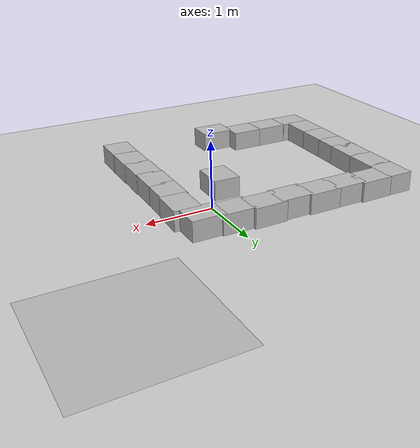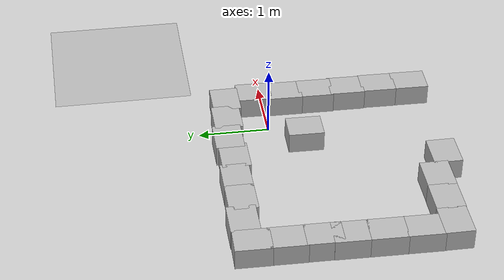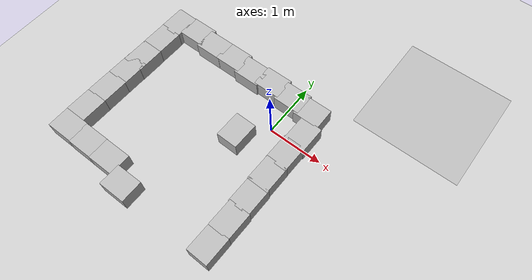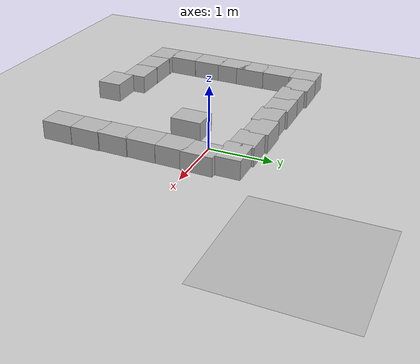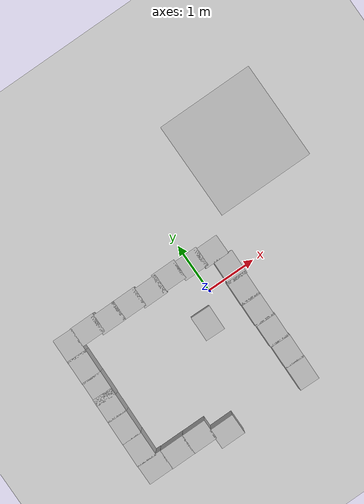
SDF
<sdf version="1.6">
 <world name="default">
  <model name="ground_plane">
   <static>1</static>
   <link name="link">
    <collision name="collision">
     <geometry><plane><normal>0 0 1</normal><size>100 100</size></plane></geometry>
     <surface>
      <contact><collide_bitmask>65535</collide_bitmask></contact>
      <friction><ode><mu>100</mu><mu2>50</mu2></ode></friction>
     </surface>
    </collision>
    <visual name="visual">
     <cast_shadows>0</cast_shadows>
     <geometry><plane><normal>0 0 1</normal><size>100 100</size></plane></geometry>
     <material>
      <script><uri>file://media/materials/scripts/gazebo.material</uri><name>Gazebo/Grey</name></script>
     </material>
    </visual>
   </link>
   <pose>0.215037 0.234206 0 0 -0 0</pose>
  </model>
  <model name="box_clone_3">
   <link name="cardboard_box_clone::link">
    <inertial>
     <mass>2</mass>
     <inertia>
      <ixx>0.0416667</ixx>
      <ixy>0</ixy>
      <ixz>0</ixz>
      <iyy>0.0566667</iyy>
      <iyz>0</iyz>
      <izz>0.0683333</izz>
     </inertia>
    </inertial>
    <visual name="visual">
     <pose>0 0 -0.15 0 -0 0</pose>
     <geometry>
      <mesh><uri>model://cardboard_box/meshes/cardboard_box.dae</uri><scale>1.25932 1.00745 0.755591</scale></mesh>
     </geometry>
    </visual>
    <collision name="collision">
     <geometry><box><size>0.5 0.4 0.3</size></box></geometry>
     <surface>
      <friction>
       <ode><mu>1</mu><mu2>1</mu2><fdir1>0 0 0</fdir1><slip1>0</slip1><slip2>0</slip2></ode>
       <torsional>
        <coefficient>1</coefficient>
        <patch_radius>0</patch_radius>
        <surface_radius>0</surface_radius>
        <use_patch_radius>1</use_patch_radius>
        <ode><slip>0</slip></ode>
       </torsional>
      </friction>
      <bounce><restitution_coefficient>0</restitution_coefficient><threshold>1e+06</threshold></bounce>
      <contact>
       <collide_without_contact>0</collide_without_contact>
       <collide_without_contact_bitmask>1</collide_without_contact_bitmask>
       <collide_bitmask>1</collide_bitmask>
       <ode>
        <soft_cfm>0</soft_cfm>
        <soft_erp>0.2</soft_erp>
        <kp>1e+07</kp>
        <kd>1</kd>
        <max_vel>0.1</max_vel>
        <min_depth>0.001</min_depth>
       </ode>
       <bullet>
        <split_impulse>1</split_impulse>
        <split_impulse_penetration_threshold>-0.01</split_impulse_penetration_threshold>
        <soft_cfm>0</soft_cfm>
        <soft_erp>0.2</soft_erp>
        <kp>1e+07</kp>
        <kd>1</kd>
       </bullet>
      </contact>
     </surface>
    </collision>
   </link>
   <static>1</static>
   <pose>-2.67175 -0.660249 0.149 0 -0 1.55153</pose>
  </model>
  <model name="box_clone_3_clone">
   <link name="cardboard_box_clone::link">
    <inertial>
     <mass>2</mass>
     <inertia>
      <ixx>0.0416667</ixx>
      <ixy>0</ixy>
      <ixz>0</ixz>
      <iyy>0.0566667</iyy>
      <iyz>0</iyz>
      <izz>0.0683333</izz>
     </inertia>
    </inertial>
    <visual name="visual">
     <pose>0 0 -0.15 0 -0 0</pose>
     <geometry>
      <mesh><uri>model://cardboard_box/meshes/cardboard_box.dae</uri><scale>1.25932 1.00745 0.755591</scale></mesh>
     </geometry>
    </visual>
    <collision name="collision">
     <geometry><box><size>0.5 0.4 0.3</size></box></geometry>
     <surface>
      <friction>
       <ode><mu>1</mu><mu2>1</mu2><fdir1>0 0 0</fdir1><slip1>0</slip1><slip2>0</slip2></ode>
       <torsional>
        <coefficient>1</coefficient>
        <patch_radius>0</patch_radius>
        <surface_radius>0</surface_radius>
        <use_patch_radius>1</use_patch_radius>
        <ode><slip>0</slip></ode>
       </torsional>
      </friction>
      <bounce><restitution_coefficient>0</restitution_coefficient><threshold>1e+06</threshold></bounce>
      <contact>
       <collide_without_contact>0</collide_without_contact>
       <collide_without_contact_bitmask>1</collide_without_contact_bitmask>
       <collide_bitmask>1</collide_bitmask>
       <ode>
        <soft_cfm>0</soft_cfm>
        <soft_erp>0.2</soft_erp>
        <kp>1e+07</kp>
        <kd>1</kd>
        <max_vel>0.1</max_vel>
        <min_depth>0.001</min_depth>
       </ode>
       <bullet>
        <split_impulse>1</split_impulse>
        <split_impulse_penetration_threshold>-0.01</split_impulse_penetration_threshold>
        <soft_cfm>0</soft_cfm>
        <soft_erp>0.2</soft_erp>
        <kp>1e+07</kp>
        <kd>1</kd>
       </bullet>
      </contact>
     </surface>
    </collision>
   </link>
   <static>1</static>
   <pose>-2.66078 -0.304132 0.149 0 -0 1.55153</pose>
  </model>
  <model name="box_clone_3_clone_0">
   <link name="cardboard_box_clone::link">
    <inertial>
     <mass>2</mass>
     <inertia>
      <ixx>0.0416667</ixx>
      <ixy>0</ixy>
      <ixz>0</ixz>
      <iyy>0.0566667</iyy>
      <iyz>0</iyz>
      <izz>0.0683333</izz>
     </inertia>
    </inertial>
    <visual name="visual">
     <pose>0 0 -0.15 0 -0 0</pose>
     <geometry>
      <mesh><uri>model://cardboard_box/meshes/cardboard_box.dae</uri><scale>1.25932 1.00745 0.755591</scale></mesh>
     </geometry>
    </visual>
    <collision name="collision">
     <geometry><box><size>0.5 0.4 0.3</size></box></geometry>
     <surface>
      <friction>
       <ode><mu>1</mu><mu2>1</mu2><fdir1>0 0 0</fdir1><slip1>0</slip1><slip2>0</slip2></ode>
       <torsional>
        <coefficient>1</coefficient>
        <patch_radius>0</patch_radius>
        <surface_radius>0</surface_radius>
        <use_patch_radius>1</use_patch_radius>
        <ode><slip>0</slip></ode>
       </torsional>
      </friction>
      <bounce><restitution_coefficient>0</restitution_coefficient><threshold>1e+06</threshold></bounce>
      <contact>
       <collide_without_contact>0</collide_without_contact>
       <collide_without_contact_bitmask>1</collide_without_contact_bitmask>
       <collide_bitmask>1</collide_bitmask>
       <ode>
        <soft_cfm>0</soft_cfm>
        <soft_erp>0.2</soft_erp>
        <kp>1e+07</kp>
        <kd>1</kd>
        <max_vel>0.1</max_vel>
        <min_depth>0.001</min_depth>
       </ode>
       <bullet>
        <split_impulse>1</split_impulse>
        <split_impulse_penetration_threshold>-0.01</split_impulse_penetration_threshold>
        <soft_cfm>0</soft_cfm>
        <soft_erp>0.2</soft_erp>
        <kp>1e+07</kp>
        <kd>1</kd>
       </bullet>
      </contact>
     </surface>
    </collision>
   </link>
   <static>1</static>
   <pose>-2.68128 -1.13471 0.149 0 -0 1.55153</pose>
  </model>
  <model name="box_clone_3_clone_1">
   <link name="cardboard_box_clone::link">
    <inertial>
     <mass>2</mass>
     <inertia>
      <ixx>0.0416667</ixx>
      <ixy>0</ixy>
      <ixz>0</ixz>
      <iyy>0.0566667</iyy>
      <iyz>0</iyz>
      <izz>0.0683333</izz>
     </inertia>
    </inertial>
    <visual name="visual">
     <pose>0 0 -0.15 0 -0 0</pose>
     <geometry>
      <mesh><uri>model://cardboard_box/meshes/cardboard_box.dae</uri><scale>1.25932 1.00745 0.755591</scale></mesh>
     </geometry>
    </visual>
    <collision name="collision">
     <geometry><box><size>0.5 0.4 0.3</size></box></geometry>
     <surface>
      <friction>
       <ode><mu>1</mu><mu2>1</mu2><fdir1>0 0 0</fdir1><slip1>0</slip1><slip2>0</slip2></ode>
       <torsional>
        <coefficient>1</coefficient>
        <patch_radius>0</patch_radius>
        <surface_radius>0</surface_radius>
        <use_patch_radius>1</use_patch_radius>
        <ode><slip>0</slip></ode>
       </torsional>
      </friction>
      <bounce><restitution_coefficient>0</restitution_coefficient><threshold>1e+06</threshold></bounce>
      <contact>
       <collide_without_contact>0</collide_without_contact>
       <collide_without_contact_bitmask>1</collide_without_contact_bitmask>
       <collide_bitmask>1</collide_bitmask>
       <ode>
        <soft_cfm>0</soft_cfm>
        <soft_erp>0.2</soft_erp>
        <kp>1e+07</kp>
        <kd>1</kd>
        <max_vel>0.1</max_vel>
        <min_depth>0.001</min_depth>
       </ode>
       <bullet>
        <split_impulse>1</split_impulse>
        <split_impulse_penetration_threshold>-0.01</split_impulse_penetration_threshold>
        <soft_cfm>0</soft_cfm>
        <soft_erp>0.2</soft_erp>
        <kp>1e+07</kp>
        <kd>1</kd>
       </bullet>
      </contact>
     </surface>
    </collision>
   </link>
   <static>1</static>
   <pose>-2.68961 -1.61993 0.149 0 -0 1.55153</pose>
  </model>
  <model name="box_clone_2_clone">
   <link name="cardboard_box_clone::link">
    <inertial>
     <mass>2</mass>
     <inertia>
      <ixx>0.0416667</ixx>
      <ixy>0</ixy>
      <ixz>0</ixz>
      <iyy>0.0566667</iyy>
      <iyz>0</iyz>
      <izz>0.0683333</izz>
     </inertia>
    </inertial>
    <visual name="visual">
     <pose>0 0 -0.15 0 -0 0</pose>
     <geometry>
      <mesh><uri>model://cardboard_box/meshes/cardboard_box.dae</uri><scale>1.25932 1.00745 0.755591</scale></mesh>
     </geometry>
    </visual>
    <collision name="collision">
     <geometry><box><size>0.5 0.4 0.3</size></box></geometry>
     <surface>
      <friction>
       <ode><mu>1</mu><mu2>1</mu2><fdir1>0 0 0</fdir1><slip1>0</slip1><slip2>0</slip2></ode>
       <torsional>
        <coefficient>1</coefficient>
        <patch_radius>0</patch_radius>
        <surface_radius>0</surface_radius>
        <use_patch_radius>1</use_patch_radius>
        <ode><slip>0</slip></ode>
       </torsional>
      </friction>
      <bounce><restitution_coefficient>0</restitution_coefficient><threshold>1e+06</threshold></bounce>
      <contact>
       <collide_without_contact>0</collide_without_contact>
       <collide_without_contact_bitmask>1</collide_without_contact_bitmask>
       <collide_bitmask>1</collide_bitmask>
       <ode>
        <soft_cfm>0</soft_cfm>
        <soft_erp>0.2</soft_erp>
        <kp>1e+07</kp>
        <kd>1</kd>
        <max_vel>0.1</max_vel>
        <min_depth>0.001</min_depth>
       </ode>
       <bullet>
        <split_impulse>1</split_impulse>
        <split_impulse_penetration_threshold>-0.01</split_impulse_penetration_threshold>
        <soft_cfm>0</soft_cfm>
        <soft_erp>0.2</soft_erp>
        <kp>1e+07</kp>
        <kd>1</kd>
       </bullet>
      </contact>
     </surface>
    </collision>
   </link>
   <static>1</static>
   <pose>-2.64031 -2.04978 0.149 0 -0 0</pose>
  </model>
  <model name="box_clone_2_clone_0">
   <link name="cardboard_box_clone::link">
    <inertial>
     <mass>2</mass>
     <inertia>
      <ixx>0.0416667</ixx>
      <ixy>0</ixy>
      <ixz>0</ixz>
      <iyy>0.0566667</iyy>
      <iyz>0</iyz>
      <izz>0.0683333</izz>
     </inertia>
    </inertial>
    <visual name="visual">
     <pose>0 0 -0.15 0 -0 0</pose>
     <geometry>
      <mesh><uri>model://cardboard_box/meshes/cardboard_box.dae</uri><scale>1.25932 1.00745 0.755591</scale></mesh>
     </geometry>
    </visual>
    <collision name="collision">
     <geometry><box><size>0.5 0.4 0.3</size></box></geometry>
     <surface>
      <friction>
       <ode><mu>1</mu><mu2>1</mu2><fdir1>0 0 0</fdir1><slip1>0</slip1><slip2>0</slip2></ode>
       <torsional>
        <coefficient>1</coefficient>
        <patch_radius>0</patch_radius>
        <surface_radius>0</surface_radius>
        <use_patch_radius>1</use_patch_radius>
        <ode><slip>0</slip></ode>
       </torsional>
      </friction>
      <bounce><restitution_coefficient>0</restitution_coefficient><threshold>1e+06</threshold></bounce>
      <contact>
       <collide_without_contact>0</collide_without_contact>
       <collide_without_contact_bitmask>1</collide_without_contact_bitmask>
       <collide_bitmask>1</collide_bitmask>
       <ode>
        <soft_cfm>0</soft_cfm>
        <soft_erp>0.2</soft_erp>
        <kp>1e+07</kp>
        <kd>1</kd>
        <max_vel>0.1</max_vel>
        <min_depth>0.001</min_depth>
       </ode>
       <bullet>
        <split_impulse>1</split_impulse>
        <split_impulse_penetration_threshold>-0.01</split_impulse_penetration_threshold>
        <soft_cfm>0</soft_cfm>
        <soft_erp>0.2</soft_erp>
        <kp>1e+07</kp>
        <kd>1</kd>
       </bullet>
      </contact>
     </surface>
    </collision>
   </link>
   <static>1</static>
   <pose>-2.1539 -2.05558 0.149 0 -0 0</pose>
  </model>
  <model name="box_clone_2_clone_1">
   <link name="cardboard_box_clone::link">
    <inertial>
     <mass>2</mass>
     <inertia>
      <ixx>0.0416667</ixx>
      <ixy>0</ixy>
      <ixz>0</ixz>
      <iyy>0.0566667</iyy>
      <iyz>0</iyz>
      <izz>0.0683333</izz>
     </inertia>
    </inertial>
    <visual name="visual">
     <pose>0 0 -0.15 0 -0 0</pose>
     <geometry>
      <mesh><uri>model://cardboard_box/meshes/cardboard_box.dae</uri><scale>1.25932 1.00745 0.755591</scale></mesh>
     </geometry>
    </visual>
    <collision name="collision">
     <geometry><box><size>0.5 0.4 0.3</size></box></geometry>
     <surface>
      <friction>
       <ode><mu>1</mu><mu2>1</mu2><fdir1>0 0 0</fdir1><slip1>0</slip1><slip2>0</slip2></ode>
       <torsional>
        <coefficient>1</coefficient>
        <patch_radius>0</patch_radius>
        <surface_radius>0</surface_radius>
        <use_patch_radius>1</use_patch_radius>
        <ode><slip>0</slip></ode>
       </torsional>
      </friction>
      <bounce><restitution_coefficient>0</restitution_coefficient><threshold>1e+06</threshold></bounce>
      <contact>
       <collide_without_contact>0</collide_without_contact>
       <collide_without_contact_bitmask>1</collide_without_contact_bitmask>
       <collide_bitmask>1</collide_bitmask>
       <ode>
        <soft_cfm>0</soft_cfm>
        <soft_erp>0.2</soft_erp>
        <kp>1e+07</kp>
        <kd>1</kd>
        <max_vel>0.1</max_vel>
        <min_depth>0.001</min_depth>
       </ode>
       <bullet>
        <split_impulse>1</split_impulse>
        <split_impulse_penetration_threshold>-0.01</split_impulse_penetration_threshold>
        <soft_cfm>0</soft_cfm>
        <soft_erp>0.2</soft_erp>
        <kp>1e+07</kp>
        <kd>1</kd>
       </bullet>
      </contact>
     </surface>
    </collision>
   </link>
   <static>1</static>
   <pose>-1.67344 -2.05843 0.149 0 -0 0</pose>
  </model>
  <model name="box_clone_3_clone_clone">
   <link name="cardboard_box_clone::link">
    <inertial>
     <mass>2</mass>
     <inertia>
      <ixx>0.0416667</ixx>
      <ixy>0</ixy>
      <ixz>0</ixz>
      <iyy>0.0566667</iyy>
      <iyz>0</iyz>
      <izz>0.0683333</izz>
     </inertia>
    </inertial>
    <visual name="visual">
     <pose>0 0 -0.15 0 -0 0</pose>
     <geometry>
      <mesh><uri>model://cardboard_box/meshes/cardboard_box.dae</uri><scale>1.25932 1.00745 0.755591</scale></mesh>
     </geometry>
    </visual>
    <collision name="collision">
     <geometry><box><size>0.5 0.4 0.3</size></box></geometry>
     <surface>
      <friction>
       <ode><mu>1</mu><mu2>1</mu2><fdir1>0 0 0</fdir1><slip1>0</slip1><slip2>0</slip2></ode>
       <torsional>
        <coefficient>1</coefficient>
        <patch_radius>0</patch_radius>
        <surface_radius>0</surface_radius>
        <use_patch_radius>1</use_patch_radius>
        <ode><slip>0</slip></ode>
       </torsional>
      </friction>
      <bounce><restitution_coefficient>0</restitution_coefficient><threshold>1e+06</threshold></bounce>
      <contact>
       <collide_without_contact>0</collide_without_contact>
       <collide_without_contact_bitmask>1</collide_without_contact_bitmask>
       <collide_bitmask>1</collide_bitmask>
       <ode>
        <soft_cfm>0</soft_cfm>
        <soft_erp>0.2</soft_erp>
        <kp>1e+07</kp>
        <kd>1</kd>
        <max_vel>0.1</max_vel>
        <min_depth>0.001</min_depth>
       </ode>
       <bullet>
        <split_impulse>1</split_impulse>
        <split_impulse_penetration_threshold>-0.01</split_impulse_penetration_threshold>
        <soft_cfm>0</soft_cfm>
        <soft_erp>0.2</soft_erp>
        <kp>1e+07</kp>
        <kd>1</kd>
       </bullet>
      </contact>
     </surface>
    </collision>
   </link>
   <static>1</static>
   <pose>0.525405 -0.308483 0.149 0 -0 1.55153</pose>
  </model>
  <model name="box_clone_3_clone_clone_clone">
   <link name="cardboard_box_clone::link">
    <inertial>
     <mass>2</mass>
     <inertia>
      <ixx>0.0416667</ixx>
      <ixy>0</ixy>
      <ixz>0</ixz>
      <iyy>0.0566667</iyy>
      <iyz>0</iyz>
      <izz>0.0683333</izz>
     </inertia>
    </inertial>
    <visual name="visual">
     <pose>0 0 -0.15 0 -0 0</pose>
     <geometry>
      <mesh><uri>model://cardboard_box/meshes/cardboard_box.dae</uri><scale>1.25932 1.00745 0.755591</scale></mesh>
     </geometry>
    </visual>
    <collision name="collision">
     <geometry><box><size>0.5 0.4 0.3</size></box></geometry>
     <surface>
      <friction>
       <ode><mu>1</mu><mu2>1</mu2><fdir1>0 0 0</fdir1><slip1>0</slip1><slip2>0</slip2></ode>
       <torsional>
        <coefficient>1</coefficient>
        <patch_radius>0</patch_radius>
        <surface_radius>0</surface_radius>
        <use_patch_radius>1</use_patch_radius>
        <ode><slip>0</slip></ode>
       </torsional>
      </friction>
      <bounce><restitution_coefficient>0</restitution_coefficient><threshold>1e+06</threshold></bounce>
      <contact>
       <collide_without_contact>0</collide_without_contact>
       <collide_without_contact_bitmask>1</collide_without_contact_bitmask>
       <collide_bitmask>1</collide_bitmask>
       <ode>
        <soft_cfm>0</soft_cfm>
        <soft_erp>0.2</soft_erp>
        <kp>1e+07</kp>
        <kd>1</kd>
        <max_vel>0.1</max_vel>
        <min_depth>0.001</min_depth>
       </ode>
       <bullet>
        <split_impulse>1</split_impulse>
        <split_impulse_penetration_threshold>-0.01</split_impulse_penetration_threshold>
        <soft_cfm>0</soft_cfm>
        <soft_erp>0.2</soft_erp>
        <kp>1e+07</kp>
        <kd>1</kd>
       </bullet>
      </contact>
     </surface>
    </collision>
   </link>
   <static>1</static>
   <pose>0.521071 -0.766393 0.149 0 -0 1.55153</pose>
  </model>
  <model name="box_clone_3_clone_clone_clone_0">
   <link name="cardboard_box_clone::link">
    <inertial>
     <mass>2</mass>
     <inertia>
      <ixx>0.0416667</ixx>
      <ixy>0</ixy>
      <ixz>0</ixz>
      <iyy>0.0566667</iyy>
      <iyz>0</iyz>
      <izz>0.0683333</izz>
     </inertia>
    </inertial>
    <visual name="visual">
     <pose>0 0 -0.15 0 -0 0</pose>
     <geometry>
      <mesh><uri>model://cardboard_box/meshes/cardboard_box.dae</uri><scale>1.25932 1.00745 0.755591</scale></mesh>
     </geometry>
    </visual>
    <collision name="collision">
     <geometry><box><size>0.5 0.4 0.3</size></box></geometry>
     <surface>
      <friction>
       <ode><mu>1</mu><mu2>1</mu2><fdir1>0 0 0</fdir1><slip1>0</slip1><slip2>0</slip2></ode>
       <torsional>
        <coefficient>1</coefficient>
        <patch_radius>0</patch_radius>
        <surface_radius>0</surface_radius>
        <use_patch_radius>1</use_patch_radius>
        <ode><slip>0</slip></ode>
       </torsional>
      </friction>
      <bounce><restitution_coefficient>0</restitution_coefficient><threshold>1e+06</threshold></bounce>
      <contact>
       <collide_without_contact>0</collide_without_contact>
       <collide_without_contact_bitmask>1</collide_without_contact_bitmask>
       <collide_bitmask>1</collide_bitmask>
       <ode>
        <soft_cfm>0</soft_cfm>
        <soft_erp>0.2</soft_erp>
        <kp>1e+07</kp>
        <kd>1</kd>
        <max_vel>0.1</max_vel>
        <min_depth>0.001</min_depth>
       </ode>
       <bullet>
        <split_impulse>1</split_impulse>
        <split_impulse_penetration_threshold>-0.01</split_impulse_penetration_threshold>
        <soft_cfm>0</soft_cfm>
        <soft_erp>0.2</soft_erp>
        <kp>1e+07</kp>
        <kd>1</kd>
       </bullet>
      </contact>
     </surface>
    </collision>
   </link>
   <static>1</static>
   <pose>0.524186 -1.22775 0.149 0 -0 1.55153</pose>
  </model>
  <model name="box_clone_3_clone_clone_clone_1">
   <link name="cardboard_box_clone::link">
    <inertial>
     <mass>2</mass>
     <inertia>
      <ixx>0.0416667</ixx>
      <ixy>0</ixy>
      <ixz>0</ixz>
      <iyy>0.0566667</iyy>
      <iyz>0</iyz>
      <izz>0.0683333</izz>
     </inertia>
    </inertial>
    <visual name="visual">
     <pose>0 0 -0.15 0 -0 0</pose>
     <geometry>
      <mesh><uri>model://cardboard_box/meshes/cardboard_box.dae</uri><scale>1.25932 1.00745 0.755591</scale></mesh>
     </geometry>
    </visual>
    <collision name="collision">
     <geometry><box><size>0.5 0.4 0.3</size></box></geometry>
     <surface>
      <friction>
       <ode><mu>1</mu><mu2>1</mu2><fdir1>0 0 0</fdir1><slip1>0</slip1><slip2>0</slip2></ode>
       <torsional>
        <coefficient>1</coefficient>
        <patch_radius>0</patch_radius>
        <surface_radius>0</surface_radius>
        <use_patch_radius>1</use_patch_radius>
        <ode><slip>0</slip></ode>
       </torsional>
      </friction>
      <bounce><restitution_coefficient>0</restitution_coefficient><threshold>1e+06</threshold></bounce>
      <contact>
       <collide_without_contact>0</collide_without_contact>
       <collide_without_contact_bitmask>1</collide_without_contact_bitmask>
       <collide_bitmask>1</collide_bitmask>
       <ode>
        <soft_cfm>0</soft_cfm>
        <soft_erp>0.2</soft_erp>
        <kp>1e+07</kp>
        <kd>1</kd>
        <max_vel>0.1</max_vel>
        <min_depth>0.001</min_depth>
       </ode>
       <bullet>
        <split_impulse>1</split_impulse>
        <split_impulse_penetration_threshold>-0.01</split_impulse_penetration_threshold>
        <soft_cfm>0</soft_cfm>
        <soft_erp>0.2</soft_erp>
        <kp>1e+07</kp>
        <kd>1</kd>
       </bullet>
      </contact>
     </surface>
    </collision>
   </link>
   <static>1</static>
   <pose>0.528427 -1.69636 0.149 0 -0 1.55153</pose>
  </model>
  <model name="box_clone_3_clone_clone_clone_2">
   <link name="cardboard_box_clone::link">
    <inertial>
     <mass>2</mass>
     <inertia>
      <ixx>0.0416667</ixx>
      <ixy>0</ixy>
      <ixz>0</ixz>
      <iyy>0.0566667</iyy>
      <iyz>0</iyz>
      <izz>0.0683333</izz>
     </inertia>
    </inertial>
    <visual name="visual">
     <pose>0 0 -0.15 0 -0 0</pose>
     <geometry>
      <mesh><uri>model://cardboard_box/meshes/cardboard_box.dae</uri><scale>1.25932 1.00745 0.755591</scale></mesh>
     </geometry>
    </visual>
    <collision name="collision">
     <geometry><box><size>0.5 0.4 0.3</size></box></geometry>
     <surface>
      <friction>
       <ode><mu>1</mu><mu2>1</mu2><fdir1>0 0 0</fdir1><slip1>0</slip1><slip2>0</slip2></ode>
       <torsional>
        <coefficient>1</coefficient>
        <patch_radius>0</patch_radius>
        <surface_radius>0</surface_radius>
        <use_patch_radius>1</use_patch_radius>
        <ode><slip>0</slip></ode>
       </torsional>
      </friction>
      <bounce><restitution_coefficient>0</restitution_coefficient><threshold>1e+06</threshold></bounce>
      <contact>
       <collide_without_contact>0</collide_without_contact>
       <collide_without_contact_bitmask>1</collide_without_contact_bitmask>
       <collide_bitmask>1</collide_bitmask>
       <ode>
        <soft_cfm>0</soft_cfm>
        <soft_erp>0.2</soft_erp>
        <kp>1e+07</kp>
        <kd>1</kd>
        <max_vel>0.1</max_vel>
        <min_depth>0.001</min_depth>
       </ode>
       <bullet>
        <split_impulse>1</split_impulse>
        <split_impulse_penetration_threshold>-0.01</split_impulse_penetration_threshold>
        <soft_cfm>0</soft_cfm>
        <soft_erp>0.2</soft_erp>
        <kp>1e+07</kp>
        <kd>1</kd>
       </bullet>
      </contact>
     </surface>
    </collision>
   </link>
   <static>1</static>
   <pose>0.52335 -2.17334 0.149 0 -0 1.55153</pose>
  </model>
  <model name="box_clone_3_clone_clone_11">
   <link name="cardboard_box_clone::link">
    <inertial>
     <mass>2</mass>
     <inertia>
      <ixx>0.0416667</ixx>
      <ixy>0</ixy>
      <ixz>0</ixz>
      <iyy>0.0566667</iyy>
      <iyz>0</iyz>
      <izz>0.0683333</izz>
     </inertia>
    </inertial>
    <visual name="visual">
     <pose>0 0 -0.15 0 -0 0</pose>
     <geometry>
      <mesh><uri>model://cardboard_box/meshes/cardboard_box.dae</uri><scale>1.25932 1.00745 0.755591</scale></mesh>
     </geometry>
    </visual>
    <collision name="collision">
     <geometry><box><size>0.5 0.4 0.3</size></box></geometry>
     <surface>
      <friction>
       <ode><mu>1</mu><mu2>1</mu2><fdir1>0 0 0</fdir1><slip1>0</slip1><slip2>0</slip2></ode>
       <torsional>
        <coefficient>1</coefficient>
        <patch_radius>0</patch_radius>
        <surface_radius>0</surface_radius>
        <use_patch_radius>1</use_patch_radius>
        <ode><slip>0</slip></ode>
       </torsional>
      </friction>
      <bounce><restitution_coefficient>0</restitution_coefficient><threshold>1e+06</threshold></bounce>
      <contact>
       <collide_without_contact>0</collide_without_contact>
       <collide_without_contact_bitmask>1</collide_without_contact_bitmask>
       <collide_bitmask>1</collide_bitmask>
       <ode>
        <soft_cfm>0</soft_cfm>
        <soft_erp>0.2</soft_erp>
        <kp>1e+07</kp>
        <kd>1</kd>
        <max_vel>0.1</max_vel>
        <min_depth>0.001</min_depth>
       </ode>
       <bullet>
        <split_impulse>1</split_impulse>
        <split_impulse_penetration_threshold>-0.01</split_impulse_penetration_threshold>
        <soft_cfm>0</soft_cfm>
        <soft_erp>0.2</soft_erp>
        <kp>1e+07</kp>
        <kd>1</kd>
       </bullet>
      </contact>
     </surface>
    </collision>
   </link>
   <static>1</static>
   <pose>-2.65546 0.170058 0.149 0 -0 1.55153</pose>
  </model>
  <model name="box_clone_3_clone_clone_12">
   <link name="cardboard_box_clone::link">
    <inertial>
     <mass>2</mass>
     <inertia>
      <ixx>0.0416667</ixx>
      <ixy>0</ixy>
      <ixz>0</ixz>
      <iyy>0.0566667</iyy>
      <iyz>0</iyz>
      <izz>0.0683333</izz>
     </inertia>
    </inertial>
    <visual name="visual">
     <pose>0 0 -0.15 0 -0 0</pose>
     <geometry>
      <mesh><uri>model://cardboard_box/meshes/cardboard_box.dae</uri><scale>1.25932 1.00745 0.755591</scale></mesh>
     </geometry>
    </visual>
    <collision name="collision">
     <geometry><box><size>0.5 0.4 0.3</size></box></geometry>
     <surface>
      <friction>
       <ode><mu>1</mu><mu2>1</mu2><fdir1>0 0 0</fdir1><slip1>0</slip1><slip2>0</slip2></ode>
       <torsional>
        <coefficient>1</coefficient>
        <patch_radius>0</patch_radius>
        <surface_radius>0</surface_radius>
        <use_patch_radius>1</use_patch_radius>
        <ode><slip>0</slip></ode>
       </torsional>
      </friction>
      <bounce><restitution_coefficient>0</restitution_coefficient><threshold>1e+06</threshold></bounce>
      <contact>
       <collide_without_contact>0</collide_without_contact>
       <collide_without_contact_bitmask>1</collide_without_contact_bitmask>
       <collide_bitmask>1</collide_bitmask>
       <ode>
        <soft_cfm>0</soft_cfm>
        <soft_erp>0.2</soft_erp>
        <kp>1e+07</kp>
        <kd>1</kd>
        <max_vel>0.1</max_vel>
        <min_depth>0.001</min_depth>
       </ode>
       <bullet>
        <split_impulse>1</split_impulse>
        <split_impulse_penetration_threshold>-0.01</split_impulse_penetration_threshold>
        <soft_cfm>0</soft_cfm>
        <soft_erp>0.2</soft_erp>
        <kp>1e+07</kp>
        <kd>1</kd>
       </bullet>
      </contact>
     </surface>
    </collision>
   </link>
   <static>1</static>
   <pose>-2.65028 0.632164 0.149 0 -0 1.55153</pose>
  </model>
  <model name="box_clone_2">
   <link name="cardboard_box_clone::link">
    <inertial>
     <mass>2</mass>
     <inertia>
      <ixx>0.0416667</ixx>
      <ixy>0</ixy>
      <ixz>0</ixz>
      <iyy>0.0566667</iyy>
      <iyz>0</iyz>
      <izz>0.0683333</izz>
     </inertia>
    </inertial>
    <visual name="visual">
     <pose>0 0 -0.15 0 -0 0</pose>
     <geometry>
      <mesh><uri>model://cardboard_box/meshes/cardboard_box.dae</uri><scale>1.25932 1.00745 0.755591</scale></mesh>
     </geometry>
    </visual>
    <collision name="collision">
     <geometry><box><size>0.5 0.4 0.3</size></box></geometry>
     <surface>
      <friction>
       <ode><mu>1</mu><mu2>1</mu2><fdir1>0 0 0</fdir1><slip1>0</slip1><slip2>0</slip2></ode>
       <torsional>
        <coefficient>1</coefficient>
        <patch_radius>0</patch_radius>
        <surface_radius>0</surface_radius>
        <use_patch_radius>1</use_patch_radius>
        <ode><slip>0</slip></ode>
       </torsional>
      </friction>
      <bounce><restitution_coefficient>0</restitution_coefficient><threshold>1e+06</threshold></bounce>
      <contact>
       <collide_without_contact>0</collide_without_contact>
       <collide_without_contact_bitmask>1</collide_without_contact_bitmask>
       <collide_bitmask>1</collide_bitmask>
       <ode>
        <soft_cfm>0</soft_cfm>
        <soft_erp>0.2</soft_erp>
        <kp>1e+07</kp>
        <kd>1</kd>
        <max_vel>0.1</max_vel>
        <min_depth>0.001</min_depth>
       </ode>
       <bullet>
        <split_impulse>1</split_impulse>
        <split_impulse_penetration_threshold>-0.01</split_impulse_penetration_threshold>
        <soft_cfm>0</soft_cfm>
        <soft_erp>0.2</soft_erp>
        <kp>1e+07</kp>
        <kd>1</kd>
       </bullet>
      </contact>
     </surface>
    </collision>
   </link>
   <static>1</static>
   <pose>-2.22103 0.687687 0.149 0 -0 0</pose>
  </model>
  <model name="box_clone_32">
   <link name="cardboard_box_clone::link">
    <inertial>
     <mass>2</mass>
     <inertia>
      <ixx>0.0416667</ixx>
      <ixy>0</ixy>
      <ixz>0</ixz>
      <iyy>0.0566667</iyy>
      <iyz>0</iyz>
      <izz>0.0683333</izz>
     </inertia>
    </inertial>
    <visual name="visual">
     <pose>0 0 -0.15 0 -0 0</pose>
     <geometry>
      <mesh><uri>model://cardboard_box/meshes/cardboard_box.dae</uri><scale>1.25932 1.00745 0.755591</scale></mesh>
     </geometry>
    </visual>
    <collision name="collision">
     <geometry><box><size>0.5 0.4 0.3</size></box></geometry>
     <surface>
      <friction>
       <ode><mu>1</mu><mu2>1</mu2><fdir1>0 0 0</fdir1><slip1>0</slip1><slip2>0</slip2></ode>
       <torsional>
        <coefficient>1</coefficient>
        <patch_radius>0</patch_radius>
        <surface_radius>0</surface_radius>
        <use_patch_radius>1</use_patch_radius>
        <ode><slip>0</slip></ode>
       </torsional>
      </friction>
      <bounce><restitution_coefficient>0</restitution_coefficient><threshold>1e+06</threshold></bounce>
      <contact>
       <collide_without_contact>0</collide_without_contact>
       <collide_without_contact_bitmask>1</collide_without_contact_bitmask>
       <collide_bitmask>1</collide_bitmask>
       <ode>
        <soft_cfm>0</soft_cfm>
        <soft_erp>0.2</soft_erp>
        <kp>1e+07</kp>
        <kd>1</kd>
        <max_vel>0.1</max_vel>
        <min_depth>0.001</min_depth>
       </ode>
       <bullet>
        <split_impulse>1</split_impulse>
        <split_impulse_penetration_threshold>-0.01</split_impulse_penetration_threshold>
        <soft_cfm>0</soft_cfm>
        <soft_erp>0.2</soft_erp>
        <kp>1e+07</kp>
        <kd>1</kd>
       </bullet>
      </contact>
     </surface>
    </collision>
   </link>
   <static>1</static>
   <pose>-1.78478 0.647683 0.149 0 -0 0</pose>
  </model>
  <model name="box_clone_33">
   <link name="cardboard_box_clone::link">
    <inertial>
     <mass>2</mass>
     <inertia>
      <ixx>0.0416667</ixx>
      <ixy>0</ixy>
      <ixz>0</ixz>
      <iyy>0.0566667</iyy>
      <iyz>0</iyz>
      <izz>0.0683333</izz>
     </inertia>
    </inertial>
    <visual name="visual">
     <pose>0 0 -0.15 0 -0 0</pose>
     <geometry>
      <mesh><uri>model://cardboard_box/meshes/cardboard_box.dae</uri><scale>1.25932 1.00745 0.755591</scale></mesh>
     </geometry>
    </visual>
    <collision name="collision">
     <geometry><box><size>0.5 0.4 0.3</size></box></geometry>
     <surface>
      <friction>
       <ode><mu>1</mu><mu2>1</mu2><fdir1>0 0 0</fdir1><slip1>0</slip1><slip2>0</slip2></ode>
       <torsional>
        <coefficient>1</coefficient>
        <patch_radius>0</patch_radius>
        <surface_radius>0</surface_radius>
        <use_patch_radius>1</use_patch_radius>
        <ode><slip>0</slip></ode>
       </torsional>
      </friction>
      <bounce><restitution_coefficient>0</restitution_coefficient><threshold>1e+06</threshold></bounce>
      <contact>
       <collide_without_contact>0</collide_without_contact>
       <collide_without_contact_bitmask>1</collide_without_contact_bitmask>
       <collide_bitmask>1</collide_bitmask>
       <ode>
        <soft_cfm>0</soft_cfm>
        <soft_erp>0.2</soft_erp>
        <kp>1e+07</kp>
        <kd>1</kd>
        <max_vel>0.1</max_vel>
        <min_depth>0.001</min_depth>
       </ode>
       <bullet>
        <split_impulse>1</split_impulse>
        <split_impulse_penetration_threshold>-0.01</split_impulse_penetration_threshold>
        <soft_cfm>0</soft_cfm>
        <soft_erp>0.2</soft_erp>
        <kp>1e+07</kp>
        <kd>1</kd>
       </bullet>
      </contact>
     </surface>
    </collision>
   </link>
   <static>1</static>
   <pose>-1.33645 0.648898 0.149 0 -0 0</pose>
  </model>
  <model name="box_clone_34">
   <link name="cardboard_box_clone::link">
    <inertial>
     <mass>2</mass>
     <inertia>
      <ixx>0.0416667</ixx>
      <ixy>0</ixy>
      <ixz>0</ixz>
      <iyy>0.0566667</iyy>
      <iyz>0</iyz>
      <izz>0.0683333</izz>
     </inertia>
    </inertial>
    <visual name="visual">
     <pose>0 0 -0.15 0 -0 0</pose>
     <geometry>
      <mesh><uri>model://cardboard_box/meshes/cardboard_box.dae</uri><scale>1.25932 1.00745 0.755591</scale></mesh>
     </geometry>
    </visual>
    <collision name="collision">
     <geometry><box><size>0.5 0.4 0.3</size></box></geometry>
     <surface>
      <friction>
       <ode><mu>1</mu><mu2>1</mu2><fdir1>0 0 0</fdir1><slip1>0</slip1><slip2>0</slip2></ode>
       <torsional>
        <coefficient>1</coefficient>
        <patch_radius>0</patch_radius>
        <surface_radius>0</surface_radius>
        <use_patch_radius>1</use_patch_radius>
        <ode><slip>0</slip></ode>
       </torsional>
      </friction>
      <bounce><restitution_coefficient>0</restitution_coefficient><threshold>1e+06</threshold></bounce>
      <contact>
       <collide_without_contact>0</collide_without_contact>
       <collide_without_contact_bitmask>1</collide_without_contact_bitmask>
       <collide_bitmask>1</collide_bitmask>
       <ode>
        <soft_cfm>0</soft_cfm>
        <soft_erp>0.2</soft_erp>
        <kp>1e+07</kp>
        <kd>1</kd>
        <max_vel>0.1</max_vel>
        <min_depth>0.001</min_depth>
       </ode>
       <bullet>
        <split_impulse>1</split_impulse>
        <split_impulse_penetration_threshold>-0.01</split_impulse_penetration_threshold>
        <soft_cfm>0</soft_cfm>
        <soft_erp>0.2</soft_erp>
        <kp>1e+07</kp>
        <kd>1</kd>
       </bullet>
      </contact>
     </surface>
    </collision>
   </link>
   <static>1</static>
   <pose>-0.889995 0.614023 0.149 0 -0 0</pose>
  </model>
  <model name="box_clone_35">
   <link name="cardboard_box_clone::link">
    <inertial>
     <mass>2</mass>
     <inertia>
      <ixx>0.0416667</ixx>
      <ixy>0</ixy>
      <ixz>0</ixz>
      <iyy>0.0566667</iyy>
      <iyz>0</iyz>
      <izz>0.0683333</izz>
     </inertia>
    </inertial>
    <visual name="visual">
     <pose>0 0 -0.15 0 -0 0</pose>
     <geometry>
      <mesh><uri>model://cardboard_box/meshes/cardboard_box.dae</uri><scale>1.25932 1.00745 0.755591</scale></mesh>
     </geometry>
    </visual>
    <collision name="collision">
     <geometry><box><size>0.5 0.4 0.3</size></box></geometry>
     <surface>
      <friction>
       <ode><mu>1</mu><mu2>1</mu2><fdir1>0 0 0</fdir1><slip1>0</slip1><slip2>0</slip2></ode>
       <torsional>
        <coefficient>1</coefficient>
        <patch_radius>0</patch_radius>
        <surface_radius>0</surface_radius>
        <use_patch_radius>1</use_patch_radius>
        <ode><slip>0</slip></ode>
       </torsional>
      </friction>
      <bounce><restitution_coefficient>0</restitution_coefficient><threshold>1e+06</threshold></bounce>
      <contact>
       <collide_without_contact>0</collide_without_contact>
       <collide_without_contact_bitmask>1</collide_without_contact_bitmask>
       <collide_bitmask>1</collide_bitmask>
       <ode>
        <soft_cfm>0</soft_cfm>
        <soft_erp>0.2</soft_erp>
        <kp>1e+07</kp>
        <kd>1</kd>
        <max_vel>0.1</max_vel>
        <min_depth>0.001</min_depth>
       </ode>
       <bullet>
        <split_impulse>1</split_impulse>
        <split_impulse_penetration_threshold>-0.01</split_impulse_penetration_threshold>
        <soft_cfm>0</soft_cfm>
        <soft_erp>0.2</soft_erp>
        <kp>1e+07</kp>
        <kd>1</kd>
       </bullet>
      </contact>
     </surface>
    </collision>
   </link>
   <static>1</static>
   <pose>-0.459248 0.641005 0.149 0 -0 0</pose>
  </model>
  <model name="box_clone_36">
   <link name="cardboard_box_clone::link">
    <inertial>
     <mass>2</mass>
     <inertia>
      <ixx>0.0416667</ixx>
      <ixy>0</ixy>
      <ixz>0</ixz>
      <iyy>0.0566667</iyy>
      <iyz>0</iyz>
      <izz>0.0683333</izz>
     </inertia>
    </inertial>
    <visual name="visual">
     <pose>0 0 -0.15 0 -0 0</pose>
     <geometry>
      <mesh><uri>model://cardboard_box/meshes/cardboard_box.dae</uri><scale>1.25932 1.00745 0.755591</scale></mesh>
     </geometry>
    </visual>
    <collision name="collision">
     <geometry><box><size>0.5 0.4 0.3</size></box></geometry>
     <surface>
      <friction>
       <ode><mu>1</mu><mu2>1</mu2><fdir1>0 0 0</fdir1><slip1>0</slip1><slip2>0</slip2></ode>
       <torsional>
        <coefficient>1</coefficient>
        <patch_radius>0</patch_radius>
        <surface_radius>0</surface_radius>
        <use_patch_radius>1</use_patch_radius>
        <ode><slip>0</slip></ode>
       </torsional>
      </friction>
      <bounce><restitution_coefficient>0</restitution_coefficient><threshold>1e+06</threshold></bounce>
      <contact>
       <collide_without_contact>0</collide_without_contact>
       <collide_without_contact_bitmask>1</collide_without_contact_bitmask>
       <collide_bitmask>1</collide_bitmask>
       <ode>
        <soft_cfm>0</soft_cfm>
        <soft_erp>0.2</soft_erp>
        <kp>1e+07</kp>
        <kd>1</kd>
        <max_vel>0.1</max_vel>
        <min_depth>0.001</min_depth>
       </ode>
       <bullet>
        <split_impulse>1</split_impulse>
        <split_impulse_penetration_threshold>-0.01</split_impulse_penetration_threshold>
        <soft_cfm>0</soft_cfm>
        <soft_erp>0.2</soft_erp>
        <kp>1e+07</kp>
        <kd>1</kd>
       </bullet>
      </contact>
     </surface>
    </collision>
   </link>
   <static>1</static>
   <pose>0 0.598558 0.149 0 -0 0</pose>
  </model>
  <model name="box_clone_37">
   <link name="cardboard_box_clone::link">
    <inertial>
     <mass>2</mass>
     <inertia>
      <ixx>0.0416667</ixx>
      <ixy>0</ixy>
      <ixz>0</ixz>
      <iyy>0.0566667</iyy>
      <iyz>0</iyz>
      <izz>0.0683333</izz>
     </inertia>
    </inertial>
    <visual name="visual">
     <pose>0 0 -0.15 0 -0 0</pose>
     <geometry>
      <mesh><uri>model://cardboard_box/meshes/cardboard_box.dae</uri><scale>1.25932 1.00745 0.755591</scale></mesh>
     </geometry>
    </visual>
    <collision name="collision">
     <geometry><box><size>0.5 0.4 0.3</size></box></geometry>
     <surface>
      <friction>
       <ode><mu>1</mu><mu2>1</mu2><fdir1>0 0 0</fdir1><slip1>0</slip1><slip2>0</slip2></ode>
       <torsional>
        <coefficient>1</coefficient>
        <patch_radius>0</patch_radius>
        <surface_radius>0</surface_radius>
        <use_patch_radius>1</use_patch_radius>
        <ode><slip>0</slip></ode>
       </torsional>
      </friction>
      <bounce><restitution_coefficient>0</restitution_coefficient><threshold>1e+06</threshold></bounce>
      <contact>
       <collide_without_contact>0</collide_without_contact>
       <collide_without_contact_bitmask>1</collide_without_contact_bitmask>
       <collide_bitmask>1</collide_bitmask>
       <ode>
        <soft_cfm>0</soft_cfm>
        <soft_erp>0.2</soft_erp>
        <kp>1e+07</kp>
        <kd>1</kd>
        <max_vel>0.1</max_vel>
        <min_depth>0.001</min_depth>
       </ode>
       <bullet>
        <split_impulse>1</split_impulse>
        <split_impulse_penetration_threshold>-0.01</split_impulse_penetration_threshold>
        <soft_cfm>0</soft_cfm>
        <soft_erp>0.2</soft_erp>
        <kp>1e+07</kp>
        <kd>1</kd>
       </bullet>
      </contact>
     </surface>
    </collision>
   </link>
   <static>1</static>
   <pose>0.427273 0.565972 0.149 0 -0 0</pose>
  </model>
  <model name="box_clone_3_clone_clone_11_clone">
   <link name="cardboard_box_clone::link">
    <inertial>
     <mass>2</mass>
     <inertia>
      <ixx>0.0416667</ixx>
      <ixy>0</ixy>
      <ixz>0</ixz>
      <iyy>0.0566667</iyy>
      <iyz>0</iyz>
      <izz>0.0683333</izz>
     </inertia>
    </inertial>
    <visual name="visual">
     <pose>0 0 -0.15 0 -0 0</pose>
     <geometry>
      <mesh><uri>model://cardboard_box/meshes/cardboard_box.dae</uri><scale>1.25932 1.00745 0.755591</scale></mesh>
     </geometry>
    </visual>
    <collision name="collision">
     <geometry><box><size>0.5 0.4 0.3</size></box></geometry>
     <surface>
      <friction>
       <ode><mu>1</mu><mu2>1</mu2><fdir1>0 0 0</fdir1><slip1>0</slip1><slip2>0</slip2></ode>
       <torsional>
        <coefficient>1</coefficient>
        <patch_radius>0</patch_radius>
        <surface_radius>0</surface_radius>
        <use_patch_radius>1</use_patch_radius>
        <ode><slip>0</slip></ode>
       </torsional>
      </friction>
      <bounce><restitution_coefficient>0</restitution_coefficient><threshold>1e+06</threshold></bounce>
      <contact>
       <collide_without_contact>0</collide_without_contact>
       <collide_without_contact_bitmask>1</collide_without_contact_bitmask>
       <collide_bitmask>1</collide_bitmask>
       <ode>
        <soft_cfm>0</soft_cfm>
        <soft_erp>0.2</soft_erp>
        <kp>1e+07</kp>
        <kd>1</kd>
        <max_vel>0.1</max_vel>
        <min_depth>0.001</min_depth>
       </ode>
       <bullet>
        <split_impulse>1</split_impulse>
        <split_impulse_penetration_threshold>-0.01</split_impulse_penetration_threshold>
        <soft_cfm>0</soft_cfm>
        <soft_erp>0.2</soft_erp>
        <kp>1e+07</kp>
        <kd>1</kd>
       </bullet>
      </contact>
     </surface>
    </collision>
   </link>
   <static>1</static>
   <pose>0.548554 0.136261 0.149 0 -0 1.55153</pose>
  </model>
  <model name="box_clone_32_clone">
   <link name="cardboard_box_clone::link">
    <inertial>
     <mass>2</mass>
     <inertia>
      <ixx>0.0416667</ixx>
      <ixy>0</ixy>
      <ixz>0</ixz>
      <iyy>0.0566667</iyy>
      <iyz>0</iyz>
      <izz>0.0683333</izz>
     </inertia>
    </inertial>
    <visual name="visual">
     <pose>0 0 -0.15 0 -0 0</pose>
     <geometry>
      <mesh><uri>model://cardboard_box/meshes/cardboard_box.dae</uri><scale>1.25932 1.00745 0.755591</scale></mesh>
     </geometry>
    </visual>
    <collision name="collision">
     <geometry><box><size>0.5 0.4 0.3</size></box></geometry>
     <surface>
      <friction>
       <ode><mu>1</mu><mu2>1</mu2><fdir1>0 0 0</fdir1><slip1>0</slip1><slip2>0</slip2></ode>
       <torsional>
        <coefficient>1</coefficient>
        <patch_radius>0</patch_radius>
        <surface_radius>0</surface_radius>
        <use_patch_radius>1</use_patch_radius>
        <ode><slip>0</slip></ode>
       </torsional>
      </friction>
      <bounce><restitution_coefficient>0</restitution_coefficient><threshold>1e+06</threshold></bounce>
      <contact>
       <collide_without_contact>0</collide_without_contact>
       <collide_without_contact_bitmask>1</collide_without_contact_bitmask>
       <collide_bitmask>1</collide_bitmask>
       <ode>
        <soft_cfm>0</soft_cfm>
        <soft_erp>0.2</soft_erp>
        <kp>1e+07</kp>
        <kd>1</kd>
        <max_vel>0.1</max_vel>
        <min_depth>0.001</min_depth>
       </ode>
       <bullet>
        <split_impulse>1</split_impulse>
        <split_impulse_penetration_threshold>-0.01</split_impulse_penetration_threshold>
        <soft_cfm>0</soft_cfm>
        <soft_erp>0.2</soft_erp>
        <kp>1e+07</kp>
        <kd>1</kd>
       </bullet>
      </contact>
     </surface>
    </collision>
   </link>
   <static>1</static>
   <pose>-1.19979 -2.26762 0.149 0 -0 0</pose>
  </model>
  <model name="box_clone_3_clone_clone_clone_3">
   <link name="cardboard_box_clone::link">
    <inertial>
     <mass>2</mass>
     <inertia>
      <ixx>0.0416667</ixx>
      <ixy>0</ixy>
      <ixz>0</ixz>
      <iyy>0.0566667</iyy>
      <iyz>0</iyz>
      <izz>0.0683333</izz>
     </inertia>
    </inertial>
    <visual name="visual">
     <pose>0 0 -0.15 0 -0 0</pose>
     <geometry>
      <mesh><uri>model://cardboard_box/meshes/cardboard_box.dae</uri><scale>1.25932 1.00745 0.755591</scale></mesh>
     </geometry>
    </visual>
    <collision name="collision">
     <geometry><box><size>0.5 0.4 0.3</size></box></geometry>
     <surface>
      <friction>
       <ode><mu>1</mu><mu2>1</mu2><fdir1>0 0 0</fdir1><slip1>0</slip1><slip2>0</slip2></ode>
       <torsional>
        <coefficient>1</coefficient>
        <patch_radius>0</patch_radius>
        <surface_radius>0</surface_radius>
        <use_patch_radius>1</use_patch_radius>
        <ode><slip>0</slip></ode>
       </torsional>
      </friction>
      <bounce><restitution_coefficient>0</restitution_coefficient><threshold>1e+06</threshold></bounce>
      <contact>
       <collide_without_contact>0</collide_without_contact>
       <collide_without_contact_bitmask>1</collide_without_contact_bitmask>
       <collide_bitmask>1</collide_bitmask>
       <ode>
        <soft_cfm>0</soft_cfm>
        <soft_erp>0.2</soft_erp>
        <kp>1e+07</kp>
        <kd>1</kd>
        <max_vel>0.1</max_vel>
        <min_depth>0.001</min_depth>
       </ode>
       <bullet>
        <split_impulse>1</split_impulse>
        <split_impulse_penetration_threshold>-0.01</split_impulse_penetration_threshold>
        <soft_cfm>0</soft_cfm>
        <soft_erp>0.2</soft_erp>
        <kp>1e+07</kp>
        <kd>1</kd>
       </bullet>
      </contact>
     </surface>
    </collision>
   </link>
   <static>1</static>
   <pose>-0.363877 -0.460464 0.149 0 -0 1.55153</pose>
  </model>
  <model name="checkerboard_plane_clone">
   <static>1</static>
   <link name="link">
    <visual name="visual">
     <geometry><mesh><uri>model://checkerboard_plane/meshes/checkerboard_plane.dae</uri></mesh></geometry>
    </visual>
   </link>
   <pose>1.99653 2.00703 0.0005 0 -0 0</pose>
  </model>
 </world>
</sdf>
